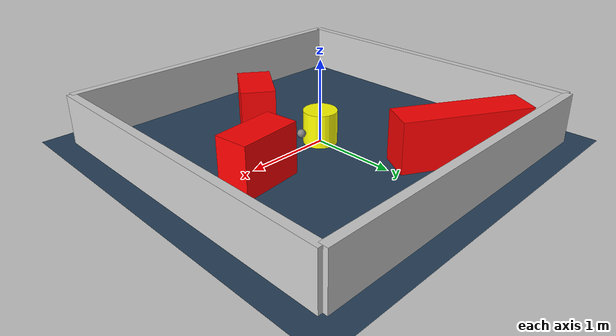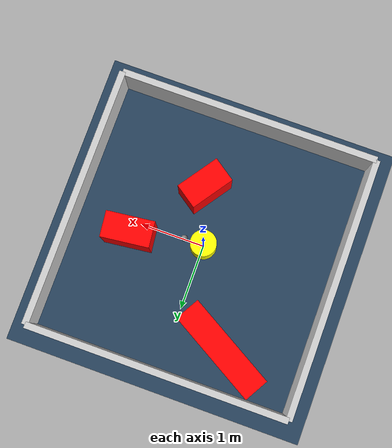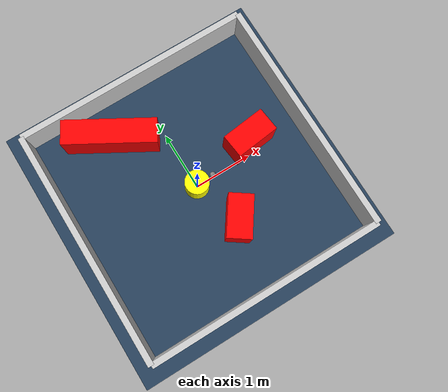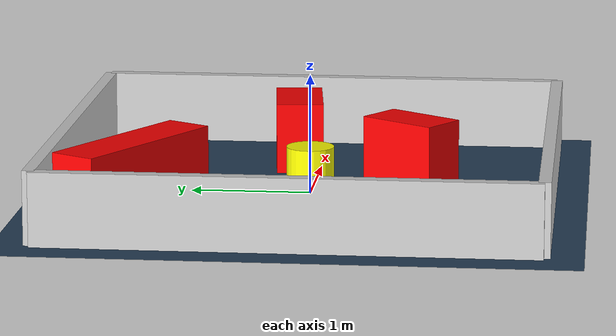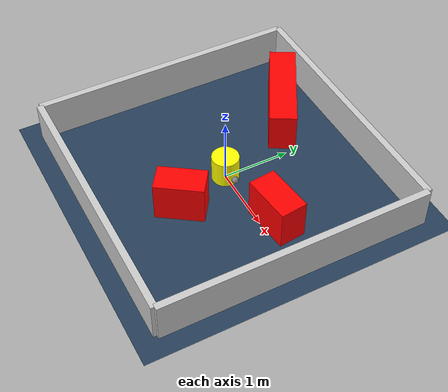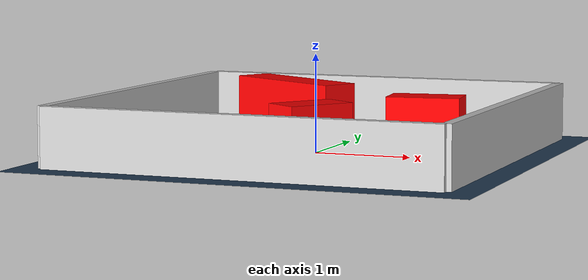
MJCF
<?xml version="1.0" ?>
<mujoco model="generated_environment">
  <option timestep="0.01" integrator="RK4" cone="elliptic"/>
  <default>
    <geom density="1"/>
  </default>
  <asset>
    <texture builtin="gradient" height="3072" rgb1="0.3 0.5 0.7" rgb2="0 0 0" type="skybox" width="512"/>
    <texture builtin="checker" height="300" mark="edge" markrgb="0.8 0.8 0.8" name="groundplane" rgb1="0.2 0.3 0.4" rgb2="0.1 0.2 0.3" type="2d" width="300"/>
    <material name="groundplane" reflectance="0.2" texrepeat="5 5" texture="groundplane" texuniform="true"/>
    <material name="robot" rgba="0.0 1.0 0.0 1"/>
  </asset>
  <worldbody>
    <light dir="0 0 -1" directional="true" pos="0 0 1.5"/>
    <geom condim="4" friction="1.0 0.005 0.001" material="groundplane" name="floor" size="0 0 0.05" type="plane"/>
    <body name="walls">
      <geom name="wall_1" condim="4" pos="-2.0 0.0 0.3" rgba="0.800000011920929 0.800000011920929 0.800000011920929 1.0" size="0.05 2.0 0.3" type="box"/>
      <geom name="wall_2" condim="4" pos="2.0 0.0 0.3" rgba="0.800000011920929 0.800000011920929 0.800000011920929 1.0" size="0.05 2.0 0.3" type="box"/>
      <geom name="wall_3" condim="4" pos="0.0 -2.0 0.3" rgba="0.800000011920929 0.800000011920929 0.800000011920929 1.0" size="2.0 0.05 0.3" type="box"/>
      <geom name="wall_4" condim="4" pos="0.0 2.0 0.3" rgba="0.800000011920929 0.800000011920929 0.800000011920929 1.0" size="2.0 0.05 0.3" type="box"/>
    </body>
    <body name="robot">
      <joint name="joint_x" type="slide" pos="0 0 0" axis="1 0 0"/>
      <joint name="joint_y" type="slide" pos="0 0 0" axis="0 1 0"/>
      <geom name="robot" type="sphere" pos="0.3 0.0 0.2" size="0.05" mass="5." friction="1.0 0.005 0.0001" condim="4" rgba="0.5 0.5 0.5 1.0"/>
      <site name="sensor_ball"/>
    </body>
    <body name="obstacle_movable_1">
      <geom name="obstacle_movable_1" condim="4" pos="0.0 0.0 0.2" euler="0 0 0.0" friction="1.0 0.005 0.001" rgba="1.0 1.0 0.0 1.0" size="0.2 0.2 0.0" type="cylinder" mass="0.1"/>
      <joint type="free"/>
    </body>
    <body name="obstacle_2_static">
      <geom name="obstacle_2_static" condim="4" pos="0.26903366761918956 -0.8225464739625503 0.3" euler="0 0 235.23337970920286" friction="1.0 0.005 0.001" rgba="1 0 0 1" size="0.3509684418084183 0.2 0.3" type="box"/>
    </body>
    <body name="obstacle_3_static">
      <geom name="obstacle_3_static" condim="4" pos="1.101274730824824 0.20392704640360182 0.3" euler="0 0 6.609620245596255" friction="1.0 0.005 0.001" rgba="1 0 0 1" size="0.36894138191893006 0.2 0.3" type="box"/>
    </body>
    <body name="obstacle_4_static">
      <geom name="obstacle_4_static" condim="4" pos="-0.7734958443440743 1.3786489313417662 0.3" euler="0 0 330.23722811699463" friction="1.0 0.005 0.001" rgba="1 0 0 1" size="0.7602462958946645 0.2 0.3" type="box"/>
    </body>
  </worldbody>
  <actuator>
    <motor name="actuator_x" joint="joint_x" gear="1" ctrlrange="-1 1"/>
    <motor name="actuator_y" joint="joint_y" gear="1" ctrlrange="-1 1"/>
  </actuator>
</mujoco>
